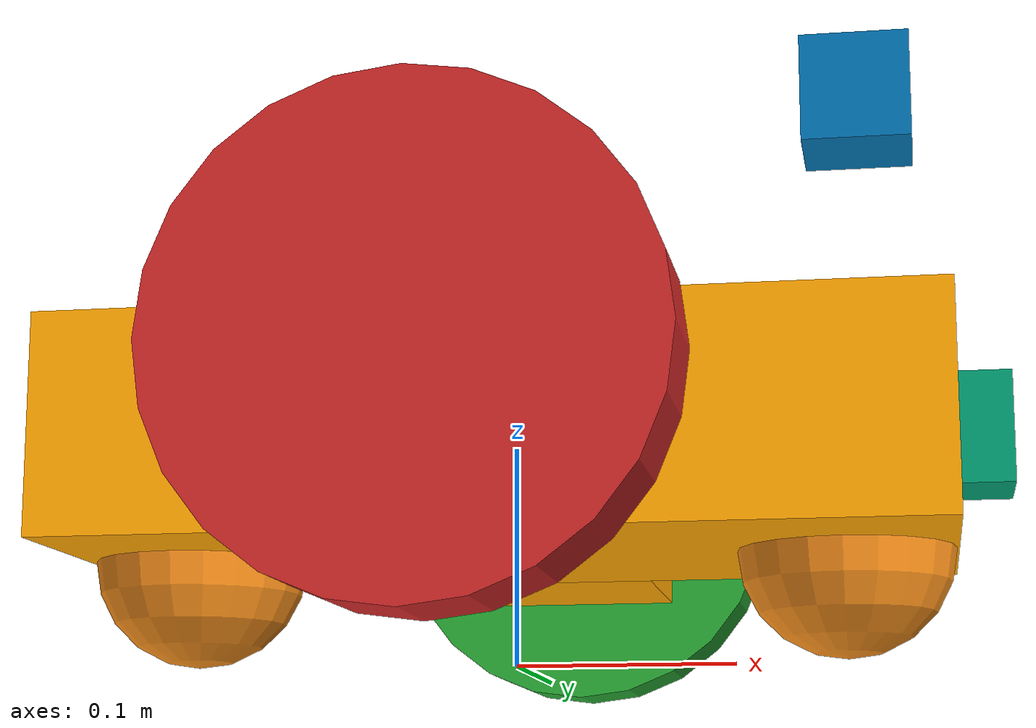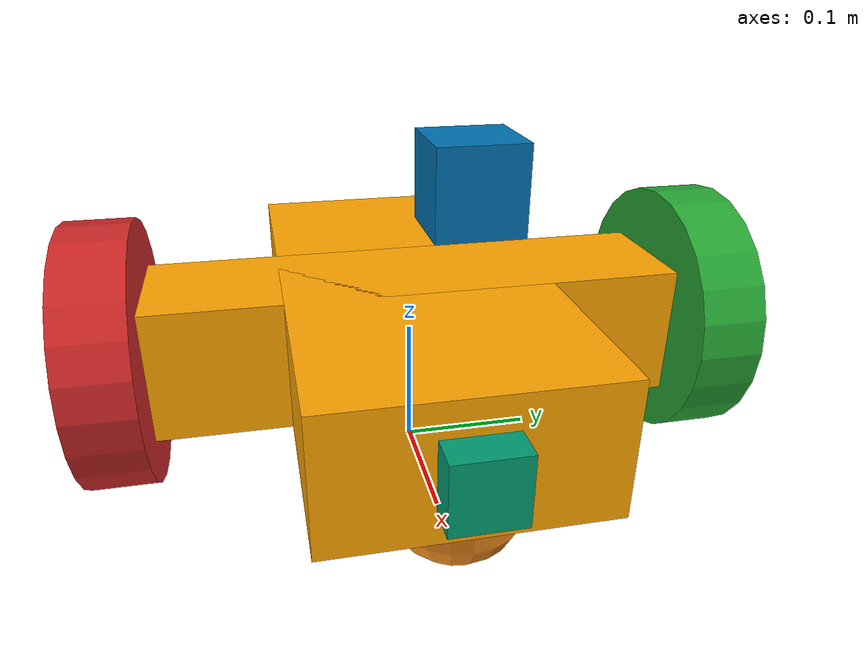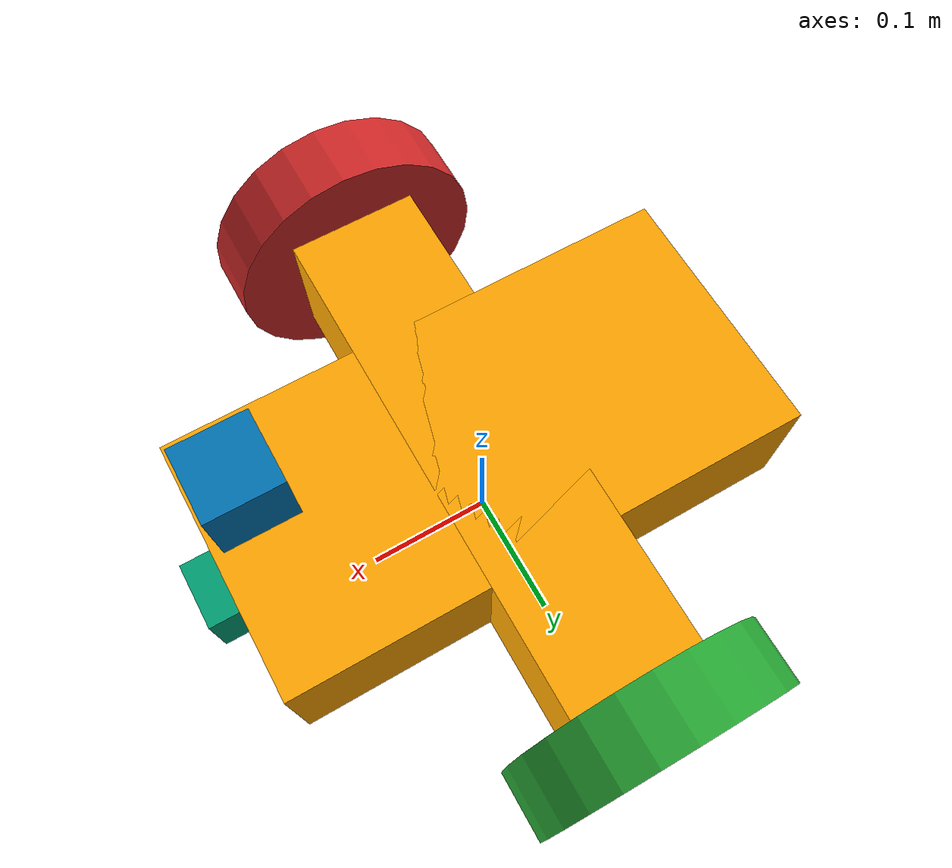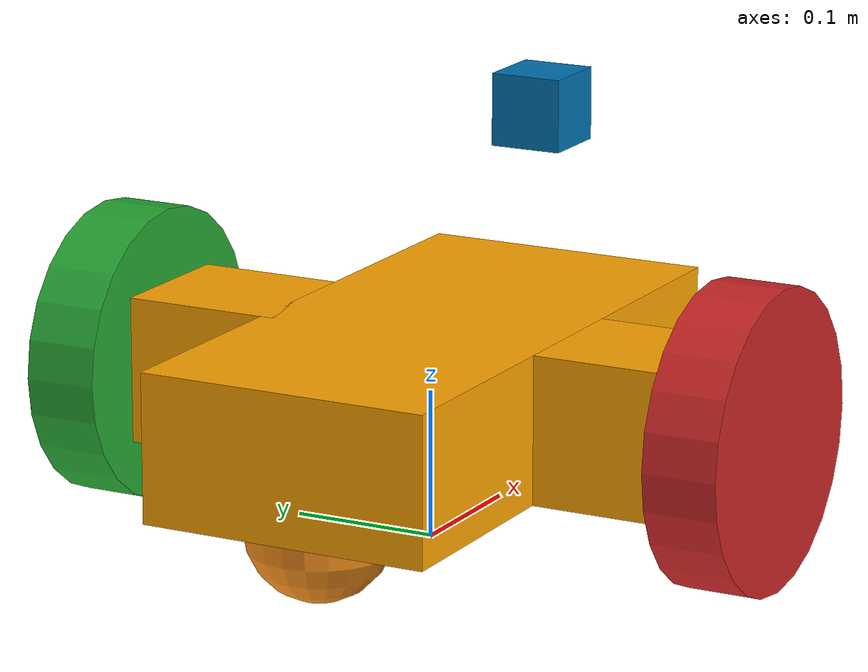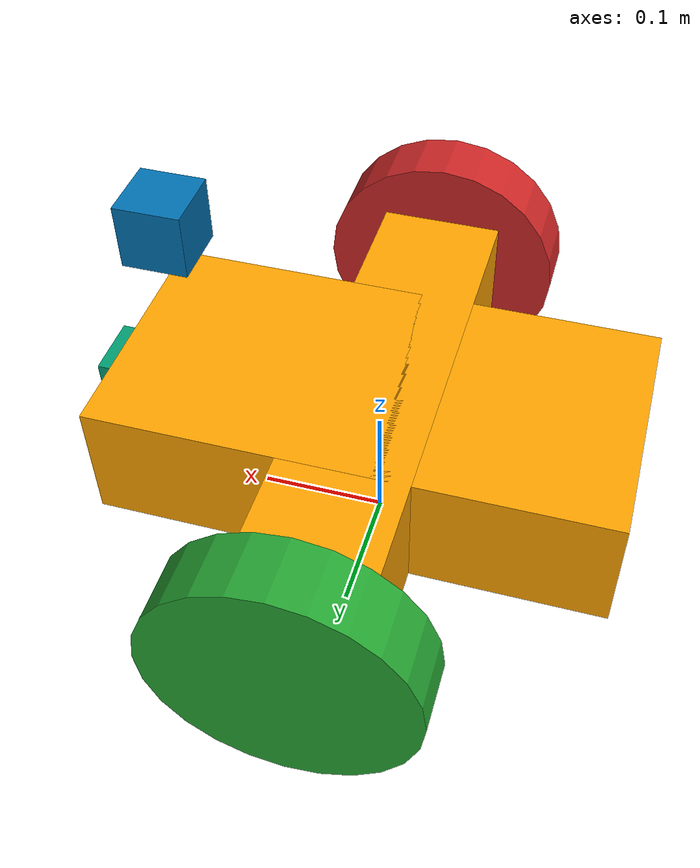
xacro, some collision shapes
<?xml version='1.0'?>

<robot name="my_robot" xmlns:xacro="http://www.ros.org/wiki/xacro">
  <xacro:include filename="$(find my_robot)/urdf/my_robot.gazebo" />
  <xacro:include filename="$(find my_robot)/urdf/materials.xacro" />
  <link name="robot_footprint"></link>

  <joint name="robot_footprint_joint" type="fixed">
    <origin xyz="0 0 0.1" rpy="0 0 0" />
    <parent link="robot_footprint"/>
    <child link="chassis" />
  </joint>

  <link name='chassis'>
    <pose>0 0 0.1 0 0 0</pose>

    <inertial>
      <mass value="15.0"/>
      <origin xyz="0.0 0 0" rpy=" 0 0 0"/>
      <inertia
          ixx="0.1" ixy="0" ixz="0"
          iyy="0.1" iyz="0"
          izz="0.1"
      />
    </inertial>

    <collision name='collision_vertical'>
      <origin xyz="0 0 0" rpy=" 0 0 0"/>
      <geometry>
        <box size=".4 .2 .1"/>
      </geometry>
    </collision>

    <visual name='chassis_visual_vertical'>
      <origin xyz="0 0 0" rpy=" 0 0 0"/>
      <geometry>
        <box size=".4 .2 .1"/>
      </geometry>
      <material name="orange">
        <color rgba="${255/255} ${165/255} ${0/255} 1.0"/>
      </material>
    </visual>

    <collision name='collision_horizontal'>
      <origin xyz="0 0 0" rpy=" 0 0 0"/>
      <geometry>
        <box size=".1 .4 .1"/>
      </geometry>
    </collision>

    <visual name='chassis_visual_horizontal'>
      <origin xyz="0 0 0" rpy=" 0 0 0"/>
      <geometry>
        <box size=".1 .4 .1"/>
      </geometry>
      <material name="orange">
        <color rgba="${255/255} ${165/255} ${0/255} 1.0"/>
      </material>
    </visual>

    <collision name='back_caster_collision'>
      <origin xyz="-0.15 0 -0.05" rpy=" 0 0 0"/>
      <geometry>
        <sphere radius="0.049"/>
      </geometry>
    </collision>

    <visual name='back_caster_visual'>
      <origin xyz="-0.15 0 -0.05" rpy=" 0 0 0"/>
      <geometry>
        <sphere radius="0.049"/>
      </geometry>
    </visual>

    <collision name='front_caster_collision'>
      <origin xyz="0.15 0 -0.05" rpy=" 0 0 0"/>
      <geometry>
        <sphere radius="0.049"/>
      </geometry>
    </collision>

    <visual name='front_caster_visual'>
      <origin xyz="0.15 0 -0.05" rpy=" 0 0 0"/>
      <geometry>
        <sphere radius="0.049"/>
      </geometry>
    </visual>

  </link>

  <link name='camera_link'>
    <pose>0 0 0 0 0</pose>

    <inertial>
      <mass value="0.1"/>
      <origin xyz="0 0 0" rpy="0 0 0"/>
      <inertia ixx="1e-6" ixy="0" ixz="0" iyy="1e-6" iyz="0" izz="1e-6"/>
    </inertial>

    <collision name='camera_link_collision'>
      <origin xyz="0 0 0"/>
      <geometry>
        <box size="0.05 0.05 0.05"/>
      </geometry>
    </collision>

    <visual name='camera_link_visual'>
      <origin xyz="0 0 0"/>
      <geometry>
        <box size="0.05 0.05 0.05"/>
      </geometry>
    </visual>
  </link>

  <joint type="fixed" name="camera_joint">
    <origin xyz="0.2 0 0" rpy="0 0 0"/>
    <child link="camera_link"/>
    <parent link="chassis"/>
    <axis xyz="0 1 0" rpy="0 0 0"/>
    <limit effort="10000" velocity="1000"/>
    <dynamics damping="1.0" friction="1.0"/>
  </joint>

  <!-- optical RGB-D camera link (project 4 map my world) -->
  <joint name="camera_optical_joint" type="fixed">
    <origin xyz="0 0 0" rpy="-1.5707 0 -1.5707"/>
    <parent link="camera_link"/>
    <child link="camera_link_optical"/>
  </joint>
  <!-- this is the child link of the joint name="camera_optical_joint" -->
  <link name="camera_link_optical">
  </link>

  <!-- hokuyo lidar -->
  <link name='hokuyo'>
    <pose>0 0 0 0 0</pose>

    <inertial>
      <mass value="1e-5"/>
      <origin xyz="0 0 0" rpy="0 0 0"/>
      <inertia ixx="1e-6" ixy="0" ixz="0" iyy="1e-6" iyz="0" izz="1e-6"/>
    </inertial>

    <collision name='collision'>
      <origin xyz="0.08 0 0.08" rpy="0 0 0"/>
      <geometry>
        <box size="0.05 0.05 0.05"/>
      </geometry>
    </collision>

    <visual name='visual'>
      <origin xyz="0.08 0 0.08" rpy="0 0 0"/>
      <geometry>
        <mesh filename="package://my_robot/mesh_files/hokuyo.dae"/>
      </geometry>
    </visual>
  </link>

  <joint type="fixed" name="hokuyo_joint">
    <origin xyz="0.08 0 0.08" rpy="0 0 0"/>
    <child link="hokuyo"/>
    <parent link="chassis"/>
    <axis xyz="0 1 0"/>
    <limit effort="10000" velocity="1000"/>
    <dynamics damping="1.0" friction="1.0"/>
  </joint>

  <!-- LEFT WHEEL LINK -->
  <link name="left_wheel">

    <inertial>
      <mass value="5"/>
      <origin xyz="0 0 0" rpy="0 1.5707 1.5707"/>
      <inertia  ixx="0.1" ixy="0" ixz="0"
                iyy="0.1" iyz="0" izz="0.1"/>
    </inertial>

    <collision>
      <origin xyz="0.0 0 0.0" rpy="0 1.5707 1.5707"/>
      <geometry>
        <cylinder radius="0.1" length="0.05"/>
      </geometry>
    </collision>

    <visual>
      <origin xyz="0 0 0" rpy="0 1.5707 1.5707"/>
      <geometry>
        <cylinder radius="0.1" length="0.05"/>
      </geometry>
    </visual>
  </link>

  <joint type="continuous" name="left_wheel_hinge">
    <origin xyz="0 0.225 0" rpy="0 0 0"/>
    <child link="left_wheel"/>
    <parent link="chassis"/>
    <axis xyz="0 1 0" rpy="0 0 0"/>
    <limit effort="10000" velocity="1000"/>
    <dynamics damping="1.0" friction="1.0"/>
  </joint>

  <!-- RIGHT WHEEN LINK -->
  <link name="right_wheel">

    <inertial>
      <mass value="5"/>
      <origin xyz="0 0 0" rpy="0 1.5707 1.5707"/>
      <inertia  ixx="0.1" ixy="0" ixz="0"
                iyy="0.1" iyz="0" izz="0.1"/>
    </inertial>

    <collision>
      <origin xyz="0 0 0" rpy="0 1.5707 1.5707"/>
      <geometry>
        <cylinder radius="0.1" length="0.05"/>
      </geometry>
    </collision>

    <visual>
      <origin xyz="0 0 0" rpy="0 1.5707 1.5707"/>
      <geometry>
        <cylinder radius="0.1" length="0.05"/>
      </geometry>
    </visual>
  </link>

  <joint type="continuous" name="right_wheel_hinge">
    <origin xyz="0 -0.225 0" rpy="0 0 0"/>
    <child link="right_wheel"/>
    <parent link="chassis"/>
    <axis xyz="0 1 0" rpy="0 0 0"/>
    <limit effort="10000" velocity="1000"/>
    <dynamics damping="1.0" friction="1.0"/>
  </joint>

  <!-- colors for chasis and wheels -->
  <gazebo reference="chassis">
    <material>Gazebo/Orange</material>
  </gazebo>

  <gazebo reference="left_wheel">
    <material>Gazebo/Green</material>
  </gazebo>

  <gazebo reference="right_wheel">
    <material>Gazebo/Red</material>
  </gazebo>

</robot>

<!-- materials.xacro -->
<robot>

  <material name="black">
    <color rgba="0.0 0.0 0.0 1.0"/>
  </material>

  <material name="blue">
    <color rgba="0.0 0.0 0.8 1.0"/>
  </material>

  <material name="orange">
    <color rgba="${255/255} ${165/255} ${0/255} 1.0"/>
  </material>

  <material name="brown">
    <color rgba="${139/255} ${69/255} ${19/255} 1.0"/>
  </material>

  <material name="red">
    <color rgba="${220/255} ${20/255} ${60/255} 1.0"/>
  </material>

  <material name="silver">
    <color rgba="${192/255} ${192/255} ${192/255} 1.0"/>
  </material>

  <material name="white">
    <color rgba="1.0 1.0 1.0 1.0"/>
  </material>

</robot>
